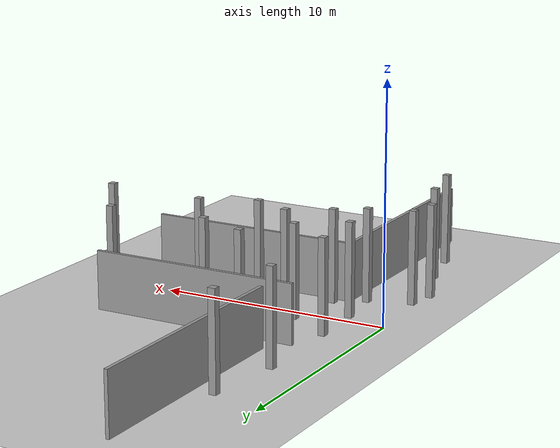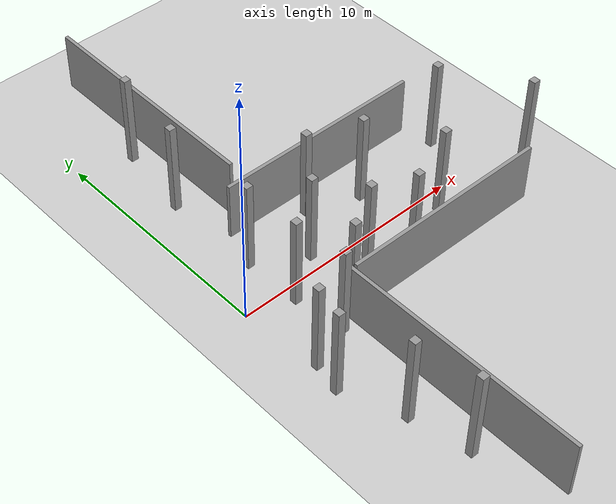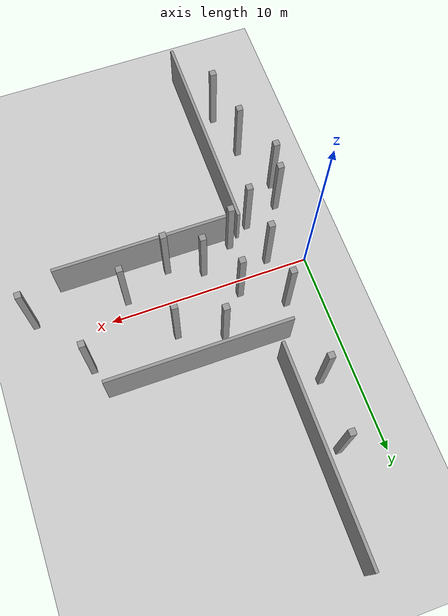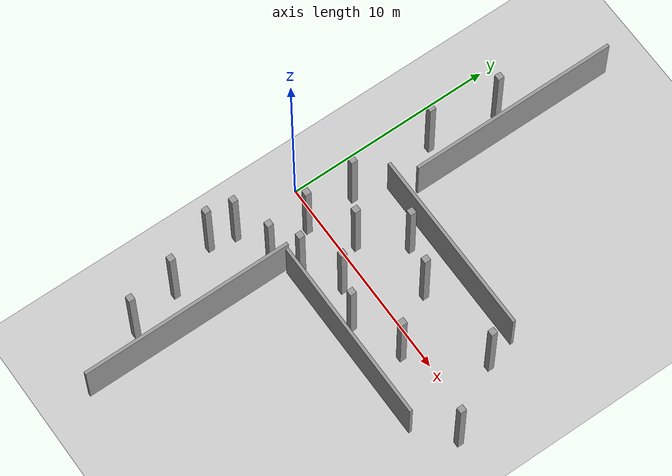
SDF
<sdf version="1.6">
 <world name="default">
  <model name="ground_plane">
   <static>1</static>
   <link name="link">
    <collision name="collision">
     <geometry><plane><normal>0 0 1</normal><size>100 100</size></plane></geometry>
     <surface><friction><ode><mu>100</mu><mu2>50</mu2></ode></friction></surface>
    </collision>
    <visual name="visual">
     <cast_shadows>0</cast_shadows>
     <geometry><plane><normal>0 0 1</normal><size>100 100</size></plane></geometry>
     <material>
      <script><uri>file://media/materials/scripts/gazebo.material</uri><name>Gazebo/Grey</name></script>
     </material>
    </visual>
   </link>
  </model>
  <model name="Untitled_clone_clone">
   <pose>7.44153 -2.41857 0 0 -0 0</pose>
   <link name="Wall_1">
    <collision name="Wall_1_Collision">
     <geometry><box><size>9 0.15 2.5</size></box></geometry>
     <pose>0 0 1.25 0 -0 0</pose>
    </collision>
    <visual name="Wall_1_Visual">
     <pose>0 0 1.25 0 -0 0</pose>
     <geometry><box><size>9 0.15 2.5</size></box></geometry>
     <material>
      <script><uri>file://media/materials/scripts/gazebo.material</uri><name>Gazebo/Grey</name></script>
      <ambient>1 1 1 1</ambient>
     </material>
     <meta><layer>0</layer></meta>
    </visual>
   </link>
   <static>1</static>
  </model>
  <model name="Untitled_clone_clone_0">
   <pose>6.68345 3.44528 0 0 -0 0</pose>
   <link name="Wall_1">
    <collision name="Wall_1_Collision">
     <geometry><box><size>9 0.15 2.5</size></box></geometry>
     <pose>0 0 1.25 0 -0 0</pose>
    </collision>
    <visual name="Wall_1_Visual">
     <pose>0 0 1.25 0 -0 0</pose>
     <geometry><box><size>9 0.15 2.5</size></box></geometry>
     <material>
      <script><uri>file://media/materials/scripts/gazebo.material</uri><name>Gazebo/Grey</name></script>
      <ambient>1 1 1 1</ambient>
     </material>
     <meta><layer>0</layer></meta>
    </visual>
   </link>
   <static>1</static>
  </model>
  <model name="Untitled_0_clone">
   <pose>2.75566 -7.3862 0 0 -0 0</pose>
   <link name="Wall_3">
    <collision name="Wall_3_Collision">
     <geometry><box><size>10.25 0.15 2.5</size></box></geometry>
     <pose>0 0 1.25 0 -0 0</pose>
    </collision>
    <visual name="Wall_3_Visual">
     <pose>0 0 1.25 0 -0 0</pose>
     <geometry><box><size>10.25 0.15 2.5</size></box></geometry>
     <material>
      <script><uri>file://media/materials/scripts/gazebo.material</uri><name>Gazebo/Grey</name></script>
      <ambient>1 1 1 1</ambient>
     </material>
     <meta><layer>0</layer></meta>
    </visual>
    <pose>0 0 0 0 -0 -1.5708</pose>
   </link>
   <static>1</static>
  </model>
  <model name="Untitled_0_clone_1">
   <pose>3.06538 9.43333 0 0 -0 0</pose>
   <link name="Wall_3">
    <collision name="Wall_3_Collision">
     <geometry><box><size>10.25 0.15 2.5</size></box></geometry>
     <pose>0 0 1.25 0 -0 0</pose>
    </collision>
    <visual name="Wall_3_Visual">
     <pose>0 0 1.25 0 -0 0</pose>
     <geometry><box><size>10.25 0.15 2.5</size></box></geometry>
     <material>
      <script><uri>file://media/materials/scripts/gazebo.material</uri><name>Gazebo/Grey</name></script>
      <ambient>1 1 1 1</ambient>
     </material>
     <meta><layer>0</layer></meta>
    </visual>
    <pose>0 0 0 0 -0 -1.5708</pose>
   </link>
   <static>1</static>
  </model>
  <model name="unit_box_clone_clone_24_clone_1">
   <link name="link">
    <inertial>
     <mass>1000</mass>
     <inertia><ixx>1340.83</ixx><ixy>0</ixy><ixz>0</ixz><iyy>1340.83</iyy><iyz>0</iyz><izz>15</izz></inertia>
    </inertial>
    <visual name="visual">
     <geometry><box><size>0.3 0.3 4</size></box></geometry>
     <material>
      <script><name>Gazebo/Grey</name><uri>file://media/materials/scripts/gazebo.material</uri></script>
      <shader type="pixel"><normal_map>__default__</normal_map></shader>
      <ambient>0.3 0.3 0.3 1</ambient>
      <diffuse>0.7 0.7 0.7 1</diffuse>
      <specular>0.01 0.01 0.01 1</specular>
      <emissive>0 0 0 1</emissive>
     </material>
    </visual>
    <collision name="collision">
     <geometry><box><size>0.3 0.3 4</size></box></geometry>
     <surface>
      <friction>
       <ode><mu>1</mu><mu2>1</mu2><fdir1>0 0 0</fdir1><slip1>0</slip1><slip2>0</slip2></ode>
       <torsional>
        <coefficient>1</coefficient>
        <patch_radius>0</patch_radius>
        <surface_radius>0</surface_radius>
        <use_patch_radius>1</use_patch_radius>
        <ode><slip>0</slip></ode>
       </torsional>
      </friction>
      <bounce><restitution_coefficient>0</restitution_coefficient><threshold>1e+06</threshold></bounce>
      <contact>
       <collide_without_contact>0</collide_without_contact>
       <collide_without_contact_bitmask>1</collide_without_contact_bitmask>
       <collide_bitmask>1</collide_bitmask>
       <ode>
        <soft_cfm>0</soft_cfm>
        <soft_erp>0.2</soft_erp>
        <kp>1e+13</kp>
        <kd>1</kd>
        <max_vel>0.01</max_vel>
        <min_depth>0</min_depth>
       </ode>
       <bullet>
        <split_impulse>1</split_impulse>
        <split_impulse_penetration_threshold>-0.01</split_impulse_penetration_threshold>
        <soft_cfm>0</soft_cfm>
        <soft_erp>0.2</soft_erp>
        <kp>1e+13</kp>
        <kd>1</kd>
       </bullet>
      </contact>
     </surface>
    </collision>
   </link>
   <static>0</static>
   <pose>1.73831 1.8342 2 -2e-06 6e-06 -0.002921</pose>
  </model>
  <model name="unit_box_clone_clone_24_clone_3">
   <link name="link">
    <inertial>
     <mass>1000</mass>
     <inertia><ixx>1340.83</ixx><ixy>0</ixy><ixz>0</ixz><iyy>1340.83</iyy><iyz>0</iyz><izz>15</izz></inertia>
    </inertial>
    <visual name="visual">
     <geometry><box><size>0.3 0.3 4</size></box></geometry>
     <material>
      <script><name>Gazebo/Grey</name><uri>file://media/materials/scripts/gazebo.material</uri></script>
      <shader type="pixel"><normal_map>__default__</normal_map></shader>
      <ambient>0.3 0.3 0.3 1</ambient>
      <diffuse>0.7 0.7 0.7 1</diffuse>
      <specular>0.01 0.01 0.01 1</specular>
      <emissive>0 0 0 1</emissive>
     </material>
    </visual>
    <collision name="collision">
     <geometry><box><size>0.3 0.3 4</size></box></geometry>
     <surface>
      <friction>
       <ode><mu>1</mu><mu2>1</mu2><fdir1>0 0 0</fdir1><slip1>0</slip1><slip2>0</slip2></ode>
       <torsional>
        <coefficient>1</coefficient>
        <patch_radius>0</patch_radius>
        <surface_radius>0</surface_radius>
        <use_patch_radius>1</use_patch_radius>
        <ode><slip>0</slip></ode>
       </torsional>
      </friction>
      <bounce><restitution_coefficient>0</restitution_coefficient><threshold>1e+06</threshold></bounce>
      <contact>
       <collide_without_contact>0</collide_without_contact>
       <collide_without_contact_bitmask>1</collide_without_contact_bitmask>
       <collide_bitmask>1</collide_bitmask>
       <ode>
        <soft_cfm>0</soft_cfm>
        <soft_erp>0.2</soft_erp>
        <kp>1e+13</kp>
        <kd>1</kd>
        <max_vel>0.01</max_vel>
        <min_depth>0</min_depth>
       </ode>
       <bullet>
        <split_impulse>1</split_impulse>
        <split_impulse_penetration_threshold>-0.01</split_impulse_penetration_threshold>
        <soft_cfm>0</soft_cfm>
        <soft_erp>0.2</soft_erp>
        <kp>1e+13</kp>
        <kd>1</kd>
       </bullet>
      </contact>
     </surface>
    </collision>
   </link>
   <static>0</static>
   <pose>1.67139 5.986 2 4e-06 -1e-06 -0.002935</pose>
  </model>
  <model name="unit_box_clone_clone_24_clone_5">
   <link name="link">
    <inertial>
     <mass>1000</mass>
     <inertia><ixx>1340.83</ixx><ixy>0</ixy><ixz>0</ixz><iyy>1340.83</iyy><iyz>0</iyz><izz>15</izz></inertia>
    </inertial>
    <visual name="visual">
     <geometry><box><size>0.3 0.3 4</size></box></geometry>
     <material>
      <script><name>Gazebo/Grey</name><uri>file://media/materials/scripts/gazebo.material</uri></script>
      <shader type="pixel"><normal_map>__default__</normal_map></shader>
      <ambient>0.3 0.3 0.3 1</ambient>
      <diffuse>0.7 0.7 0.7 1</diffuse>
      <specular>0.01 0.01 0.01 1</specular>
      <emissive>0 0 0 1</emissive>
     </material>
    </visual>
    <collision name="collision">
     <geometry><box><size>0.3 0.3 4</size></box></geometry>
     <surface>
      <friction>
       <ode><mu>1</mu><mu2>1</mu2><fdir1>0 0 0</fdir1><slip1>0</slip1><slip2>0</slip2></ode>
       <torsional>
        <coefficient>1</coefficient>
        <patch_radius>0</patch_radius>
        <surface_radius>0</surface_radius>
        <use_patch_radius>1</use_patch_radius>
        <ode><slip>0</slip></ode>
       </torsional>
      </friction>
      <bounce><restitution_coefficient>0</restitution_coefficient><threshold>1e+06</threshold></bounce>
      <contact>
       <collide_without_contact>0</collide_without_contact>
       <collide_without_contact_bitmask>1</collide_without_contact_bitmask>
       <collide_bitmask>1</collide_bitmask>
       <ode>
        <soft_cfm>0</soft_cfm>
        <soft_erp>0.2</soft_erp>
        <kp>1e+13</kp>
        <kd>1</kd>
        <max_vel>0.01</max_vel>
        <min_depth>0</min_depth>
       </ode>
       <bullet>
        <split_impulse>1</split_impulse>
        <split_impulse_penetration_threshold>-0.01</split_impulse_penetration_threshold>
        <soft_cfm>0</soft_cfm>
        <soft_erp>0.2</soft_erp>
        <kp>1e+13</kp>
        <kd>1</kd>
       </bullet>
      </contact>
     </surface>
    </collision>
   </link>
   <static>0</static>
   <pose>2.13376 9.26118 2 0 -1e-05 -0.002932</pose>
  </model>
  <model name="unit_box_clone_clone_24_clone_10">
   <link name="link">
    <inertial>
     <mass>1000</mass>
     <inertia><ixx>1340.83</ixx><ixy>0</ixy><ixz>0</ixz><iyy>1340.83</iyy><iyz>0</iyz><izz>15</izz></inertia>
    </inertial>
    <visual name="visual">
     <geometry><box><size>0.3 0.3 4</size></box></geometry>
     <material>
      <script><name>Gazebo/Grey</name><uri>file://media/materials/scripts/gazebo.material</uri></script>
      <shader type="pixel"><normal_map>__default__</normal_map></shader>
      <ambient>0.3 0.3 0.3 1</ambient>
      <diffuse>0.7 0.7 0.7 1</diffuse>
      <specular>0.01 0.01 0.01 1</specular>
      <emissive>0 0 0 1</emissive>
     </material>
    </visual>
    <collision name="collision">
     <geometry><box><size>0.3 0.3 4</size></box></geometry>
     <surface>
      <friction>
       <ode><mu>1</mu><mu2>1</mu2><fdir1>0 0 0</fdir1><slip1>0</slip1><slip2>0</slip2></ode>
       <torsional>
        <coefficient>1</coefficient>
        <patch_radius>0</patch_radius>
        <surface_radius>0</surface_radius>
        <use_patch_radius>1</use_patch_radius>
        <ode><slip>0</slip></ode>
       </torsional>
      </friction>
      <bounce><restitution_coefficient>0</restitution_coefficient><threshold>1e+06</threshold></bounce>
      <contact>
       <collide_without_contact>0</collide_without_contact>
       <collide_without_contact_bitmask>1</collide_without_contact_bitmask>
       <collide_bitmask>1</collide_bitmask>
       <ode>
        <soft_cfm>0</soft_cfm>
        <soft_erp>0.2</soft_erp>
        <kp>1e+13</kp>
        <kd>1</kd>
        <max_vel>0.01</max_vel>
        <min_depth>0</min_depth>
       </ode>
       <bullet>
        <split_impulse>1</split_impulse>
        <split_impulse_penetration_threshold>-0.01</split_impulse_penetration_threshold>
        <soft_cfm>0</soft_cfm>
        <soft_erp>0.2</soft_erp>
        <kp>1e+13</kp>
        <kd>1</kd>
       </bullet>
      </contact>
     </surface>
    </collision>
   </link>
   <static>0</static>
   <pose>0.089496 -4.54654 2 -1.9e-05 -1e-06 -0.002929</pose>
  </model>
  <model name="unit_box_clone_clone_24_clone_12">
   <link name="link">
    <inertial>
     <mass>1000</mass>
     <inertia><ixx>1340.83</ixx><ixy>0</ixy><ixz>0</ixz><iyy>1340.83</iyy><iyz>0</iyz><izz>15</izz></inertia>
    </inertial>
    <visual name="visual">
     <geometry><box><size>0.3 0.3 4</size></box></geometry>
     <material>
      <script><name>Gazebo/Grey</name><uri>file://media/materials/scripts/gazebo.material</uri></script>
      <shader type="pixel"><normal_map>__default__</normal_map></shader>
      <ambient>0.3 0.3 0.3 1</ambient>
      <diffuse>0.7 0.7 0.7 1</diffuse>
      <specular>0.01 0.01 0.01 1</specular>
      <emissive>0 0 0 1</emissive>
     </material>
    </visual>
    <collision name="collision">
     <geometry><box><size>0.3 0.3 4</size></box></geometry>
     <surface>
      <friction>
       <ode><mu>1</mu><mu2>1</mu2><fdir1>0 0 0</fdir1><slip1>0</slip1><slip2>0</slip2></ode>
       <torsional>
        <coefficient>1</coefficient>
        <patch_radius>0</patch_radius>
        <surface_radius>0</surface_radius>
        <use_patch_radius>1</use_patch_radius>
        <ode><slip>0</slip></ode>
       </torsional>
      </friction>
      <bounce><restitution_coefficient>0</restitution_coefficient><threshold>1e+06</threshold></bounce>
      <contact>
       <collide_without_contact>0</collide_without_contact>
       <collide_without_contact_bitmask>1</collide_without_contact_bitmask>
       <collide_bitmask>1</collide_bitmask>
       <ode>
        <soft_cfm>0</soft_cfm>
        <soft_erp>0.2</soft_erp>
        <kp>1e+13</kp>
        <kd>1</kd>
        <max_vel>0.01</max_vel>
        <min_depth>0</min_depth>
       </ode>
       <bullet>
        <split_impulse>1</split_impulse>
        <split_impulse_penetration_threshold>-0.01</split_impulse_penetration_threshold>
        <soft_cfm>0</soft_cfm>
        <soft_erp>0.2</soft_erp>
        <kp>1e+13</kp>
        <kd>1</kd>
       </bullet>
      </contact>
     </surface>
    </collision>
   </link>
   <static>0</static>
   <pose>1.83326 -0.615108 2 -3.4e-05 -0 -0.002931</pose>
  </model>
  <model name="unit_box_clone_clone_24_clone_13">
   <link name="link">
    <inertial>
     <mass>1000</mass>
     <inertia><ixx>1340.83</ixx><ixy>0</ixy><ixz>0</ixz><iyy>1340.83</iyy><iyz>0</iyz><izz>15</izz></inertia>
    </inertial>
    <visual name="visual">
     <geometry><box><size>0.3 0.3 4</size></box></geometry>
     <material>
      <script><name>Gazebo/Grey</name><uri>file://media/materials/scripts/gazebo.material</uri></script>
      <shader type="pixel"><normal_map>__default__</normal_map></shader>
      <ambient>0.3 0.3 0.3 1</ambient>
      <diffuse>0.7 0.7 0.7 1</diffuse>
      <specular>0.01 0.01 0.01 1</specular>
      <emissive>0 0 0 1</emissive>
     </material>
    </visual>
    <collision name="collision">
     <geometry><box><size>0.3 0.3 4</size></box></geometry>
     <surface>
      <friction>
       <ode><mu>1</mu><mu2>1</mu2><fdir1>0 0 0</fdir1><slip1>0</slip1><slip2>0</slip2></ode>
       <torsional>
        <coefficient>1</coefficient>
        <patch_radius>0</patch_radius>
        <surface_radius>0</surface_radius>
        <use_patch_radius>1</use_patch_radius>
        <ode><slip>0</slip></ode>
       </torsional>
      </friction>
      <bounce><restitution_coefficient>0</restitution_coefficient><threshold>1e+06</threshold></bounce>
      <contact>
       <collide_without_contact>0</collide_without_contact>
       <collide_without_contact_bitmask>1</collide_without_contact_bitmask>
       <collide_bitmask>1</collide_bitmask>
       <ode>
        <soft_cfm>0</soft_cfm>
        <soft_erp>0.2</soft_erp>
        <kp>1e+13</kp>
        <kd>1</kd>
        <max_vel>0.01</max_vel>
        <min_depth>0</min_depth>
       </ode>
       <bullet>
        <split_impulse>1</split_impulse>
        <split_impulse_penetration_threshold>-0.01</split_impulse_penetration_threshold>
        <soft_cfm>0</soft_cfm>
        <soft_erp>0.2</soft_erp>
        <kp>1e+13</kp>
        <kd>1</kd>
       </bullet>
      </contact>
     </surface>
    </collision>
   </link>
   <static>0</static>
   <pose>2.11596 -2.74092 2 0 -9e-06 -0.002928</pose>
  </model>
  <model name="unit_box_clone_clone_24_clone_14">
   <link name="link">
    <inertial>
     <mass>1000</mass>
     <inertia><ixx>1340.83</ixx><ixy>0</ixy><ixz>0</ixz><iyy>1340.83</iyy><iyz>0</iyz><izz>15</izz></inertia>
    </inertial>
    <visual name="visual">
     <geometry><box><size>0.3 0.3 4</size></box></geometry>
     <material>
      <script><name>Gazebo/Grey</name><uri>file://media/materials/scripts/gazebo.material</uri></script>
      <shader type="pixel"><normal_map>__default__</normal_map></shader>
      <ambient>0.3 0.3 0.3 1</ambient>
      <diffuse>0.7 0.7 0.7 1</diffuse>
      <specular>0.01 0.01 0.01 1</specular>
      <emissive>0 0 0 1</emissive>
     </material>
    </visual>
    <collision name="collision">
     <geometry><box><size>0.3 0.3 4</size></box></geometry>
     <surface>
      <friction>
       <ode><mu>1</mu><mu2>1</mu2><fdir1>0 0 0</fdir1><slip1>0</slip1><slip2>0</slip2></ode>
       <torsional>
        <coefficient>1</coefficient>
        <patch_radius>0</patch_radius>
        <surface_radius>0</surface_radius>
        <use_patch_radius>1</use_patch_radius>
        <ode><slip>0</slip></ode>
       </torsional>
      </friction>
      <bounce><restitution_coefficient>0</restitution_coefficient><threshold>1e+06</threshold></bounce>
      <contact>
       <collide_without_contact>0</collide_without_contact>
       <collide_without_contact_bitmask>1</collide_without_contact_bitmask>
       <collide_bitmask>1</collide_bitmask>
       <ode>
        <soft_cfm>0</soft_cfm>
        <soft_erp>0.2</soft_erp>
        <kp>1e+13</kp>
        <kd>1</kd>
        <max_vel>0.01</max_vel>
        <min_depth>0</min_depth>
       </ode>
       <bullet>
        <split_impulse>1</split_impulse>
        <split_impulse_penetration_threshold>-0.01</split_impulse_penetration_threshold>
        <soft_cfm>0</soft_cfm>
        <soft_erp>0.2</soft_erp>
        <kp>1e+13</kp>
        <kd>1</kd>
       </bullet>
      </contact>
     </surface>
    </collision>
   </link>
   <static>0</static>
   <pose>1.05507 -6.97856 2 0 -2e-06 -0.002931</pose>
  </model>
  <model name="unit_box_clone_clone_24_clone_16">
   <link name="link">
    <inertial>
     <mass>1000</mass>
     <inertia><ixx>1340.83</ixx><ixy>0</ixy><ixz>0</ixz><iyy>1340.83</iyy><iyz>0</iyz><izz>15</izz></inertia>
    </inertial>
    <visual name="visual">
     <geometry><box><size>0.3 0.3 4</size></box></geometry>
     <material>
      <script><name>Gazebo/Grey</name><uri>file://media/materials/scripts/gazebo.material</uri></script>
      <shader type="pixel"><normal_map>__default__</normal_map></shader>
      <ambient>0.3 0.3 0.3 1</ambient>
      <diffuse>0.7 0.7 0.7 1</diffuse>
      <specular>0.01 0.01 0.01 1</specular>
      <emissive>0 0 0 1</emissive>
     </material>
    </visual>
    <collision name="collision">
     <geometry><box><size>0.3 0.3 4</size></box></geometry>
     <surface>
      <friction>
       <ode><mu>1</mu><mu2>1</mu2><fdir1>0 0 0</fdir1><slip1>0</slip1><slip2>0</slip2></ode>
       <torsional>
        <coefficient>1</coefficient>
        <patch_radius>0</patch_radius>
        <surface_radius>0</surface_radius>
        <use_patch_radius>1</use_patch_radius>
        <ode><slip>0</slip></ode>
       </torsional>
      </friction>
      <bounce><restitution_coefficient>0</restitution_coefficient><threshold>1e+06</threshold></bounce>
      <contact>
       <collide_without_contact>0</collide_without_contact>
       <collide_without_contact_bitmask>1</collide_without_contact_bitmask>
       <collide_bitmask>1</collide_bitmask>
       <ode>
        <soft_cfm>0</soft_cfm>
        <soft_erp>0.2</soft_erp>
        <kp>1e+13</kp>
        <kd>1</kd>
        <max_vel>0.01</max_vel>
        <min_depth>0</min_depth>
       </ode>
       <bullet>
        <split_impulse>1</split_impulse>
        <split_impulse_penetration_threshold>-0.01</split_impulse_penetration_threshold>
        <soft_cfm>0</soft_cfm>
        <soft_erp>0.2</soft_erp>
        <kp>1e+13</kp>
        <kd>1</kd>
       </bullet>
      </contact>
     </surface>
    </collision>
   </link>
   <static>0</static>
   <pose>1.58372 -9.35543 2 -1e-06 -2e-06 -0.002927</pose>
  </model>
  <model name="unit_box_clone_clone_24_clone_18">
   <link name="link">
    <inertial>
     <mass>1000</mass>
     <inertia><ixx>1340.83</ixx><ixy>0</ixy><ixz>0</ixz><iyy>1340.83</iyy><iyz>0</iyz><izz>15</izz></inertia>
    </inertial>
    <visual name="visual">
     <geometry><box><size>0.3 0.3 4</size></box></geometry>
     <material>
      <script><name>Gazebo/Grey</name><uri>file://media/materials/scripts/gazebo.material</uri></script>
      <shader type="pixel"><normal_map>__default__</normal_map></shader>
      <ambient>0.3 0.3 0.3 1</ambient>
      <diffuse>0.7 0.7 0.7 1</diffuse>
      <specular>0.01 0.01 0.01 1</specular>
      <emissive>0 0 0 1</emissive>
     </material>
    </visual>
    <collision name="collision">
     <geometry><box><size>0.3 0.3 4</size></box></geometry>
     <surface>
      <friction>
       <ode><mu>1</mu><mu2>1</mu2><fdir1>0 0 0</fdir1><slip1>0</slip1><slip2>0</slip2></ode>
       <torsional>
        <coefficient>1</coefficient>
        <patch_radius>0</patch_radius>
        <surface_radius>0</surface_radius>
        <use_patch_radius>1</use_patch_radius>
        <ode><slip>0</slip></ode>
       </torsional>
      </friction>
      <bounce><restitution_coefficient>0</restitution_coefficient><threshold>1e+06</threshold></bounce>
      <contact>
       <collide_without_contact>0</collide_without_contact>
       <collide_without_contact_bitmask>1</collide_without_contact_bitmask>
       <collide_bitmask>1</collide_bitmask>
       <ode>
        <soft_cfm>0</soft_cfm>
        <soft_erp>0.2</soft_erp>
        <kp>1e+13</kp>
        <kd>1</kd>
        <max_vel>0.01</max_vel>
        <min_depth>0</min_depth>
       </ode>
       <bullet>
        <split_impulse>1</split_impulse>
        <split_impulse_penetration_threshold>-0.01</split_impulse_penetration_threshold>
        <soft_cfm>0</soft_cfm>
        <soft_erp>0.2</soft_erp>
        <kp>1e+13</kp>
        <kd>1</kd>
       </bullet>
      </contact>
     </surface>
    </collision>
   </link>
   <static>0</static>
   <pose>7.24095 1.68536 2 -2e-06 -0 -0.002929</pose>
  </model>
  <model name="unit_box_clone_clone_24_clone_19">
   <link name="link">
    <inertial>
     <mass>1000</mass>
     <inertia><ixx>1340.83</ixx><ixy>0</ixy><ixz>0</ixz><iyy>1340.83</iyy><iyz>0</iyz><izz>15</izz></inertia>
    </inertial>
    <visual name="visual">
     <geometry><box><size>0.3 0.3 4</size></box></geometry>
     <material>
      <script><name>Gazebo/Grey</name><uri>file://media/materials/scripts/gazebo.material</uri></script>
      <shader type="pixel"><normal_map>__default__</normal_map></shader>
      <ambient>0.3 0.3 0.3 1</ambient>
      <diffuse>0.7 0.7 0.7 1</diffuse>
      <specular>0.01 0.01 0.01 1</specular>
      <emissive>0 0 0 1</emissive>
     </material>
    </visual>
    <collision name="collision">
     <geometry><box><size>0.3 0.3 4</size></box></geometry>
     <surface>
      <friction>
       <ode><mu>1</mu><mu2>1</mu2><fdir1>0 0 0</fdir1><slip1>0</slip1><slip2>0</slip2></ode>
       <torsional>
        <coefficient>1</coefficient>
        <patch_radius>0</patch_radius>
        <surface_radius>0</surface_radius>
        <use_patch_radius>1</use_patch_radius>
        <ode><slip>0</slip></ode>
       </torsional>
      </friction>
      <bounce><restitution_coefficient>0</restitution_coefficient><threshold>1e+06</threshold></bounce>
      <contact>
       <collide_without_contact>0</collide_without_contact>
       <collide_without_contact_bitmask>1</collide_without_contact_bitmask>
       <collide_bitmask>1</collide_bitmask>
       <ode>
        <soft_cfm>0</soft_cfm>
        <soft_erp>0.2</soft_erp>
        <kp>1e+13</kp>
        <kd>1</kd>
        <max_vel>0.01</max_vel>
        <min_depth>0</min_depth>
       </ode>
       <bullet>
        <split_impulse>1</split_impulse>
        <split_impulse_penetration_threshold>-0.01</split_impulse_penetration_threshold>
        <soft_cfm>0</soft_cfm>
        <soft_erp>0.2</soft_erp>
        <kp>1e+13</kp>
        <kd>1</kd>
       </bullet>
      </contact>
     </surface>
    </collision>
   </link>
   <static>0</static>
   <pose>5.00004 -1.00392 2 6e-06 2.7e-05 -0.002929</pose>
  </model>
  <model name="unit_box_clone_clone_24_clone_20">
   <link name="link">
    <inertial>
     <mass>1000</mass>
     <inertia><ixx>1340.83</ixx><ixy>0</ixy><ixz>0</ixz><iyy>1340.83</iyy><iyz>0</iyz><izz>15</izz></inertia>
    </inertial>
    <visual name="visual">
     <geometry><box><size>0.3 0.3 4</size></box></geometry>
     <material>
      <script><name>Gazebo/Grey</name><uri>file://media/materials/scripts/gazebo.material</uri></script>
      <shader type="pixel"><normal_map>__default__</normal_map></shader>
      <ambient>0.3 0.3 0.3 1</ambient>
      <diffuse>0.7 0.7 0.7 1</diffuse>
      <specular>0.01 0.01 0.01 1</specular>
      <emissive>0 0 0 1</emissive>
     </material>
    </visual>
    <collision name="collision">
     <geometry><box><size>0.3 0.3 4</size></box></geometry>
     <surface>
      <friction>
       <ode><mu>1</mu><mu2>1</mu2><fdir1>0 0 0</fdir1><slip1>0</slip1><slip2>0</slip2></ode>
       <torsional>
        <coefficient>1</coefficient>
        <patch_radius>0</patch_radius>
        <surface_radius>0</surface_radius>
        <use_patch_radius>1</use_patch_radius>
        <ode><slip>0</slip></ode>
       </torsional>
      </friction>
      <bounce><restitution_coefficient>0</restitution_coefficient><threshold>1e+06</threshold></bounce>
      <contact>
       <collide_without_contact>0</collide_without_contact>
       <collide_without_contact_bitmask>1</collide_without_contact_bitmask>
       <collide_bitmask>1</collide_bitmask>
       <ode>
        <soft_cfm>0</soft_cfm>
        <soft_erp>0.2</soft_erp>
        <kp>1e+13</kp>
        <kd>1</kd>
        <max_vel>0.01</max_vel>
        <min_depth>0</min_depth>
       </ode>
       <bullet>
        <split_impulse>1</split_impulse>
        <split_impulse_penetration_threshold>-0.01</split_impulse_penetration_threshold>
        <soft_cfm>0</soft_cfm>
        <soft_erp>0.2</soft_erp>
        <kp>1e+13</kp>
        <kd>1</kd>
       </bullet>
      </contact>
     </surface>
    </collision>
   </link>
   <static>0</static>
   <pose>6.65385 -1.69614 2 1e-05 -0 -0.00292</pose>
  </model>
  <model name="unit_box_clone_clone_24_clone_21">
   <link name="link">
    <inertial>
     <mass>1000</mass>
     <inertia><ixx>1340.83</ixx><ixy>0</ixy><ixz>0</ixz><iyy>1340.83</iyy><iyz>0</iyz><izz>15</izz></inertia>
    </inertial>
    <visual name="visual">
     <geometry><box><size>0.3 0.3 4</size></box></geometry>
     <material>
      <script><name>Gazebo/Grey</name><uri>file://media/materials/scripts/gazebo.material</uri></script>
      <shader type="pixel"><normal_map>__default__</normal_map></shader>
      <ambient>0.3 0.3 0.3 1</ambient>
      <diffuse>0.7 0.7 0.7 1</diffuse>
      <specular>0.01 0.01 0.01 1</specular>
      <emissive>0 0 0 1</emissive>
     </material>
    </visual>
    <collision name="collision">
     <geometry><box><size>0.3 0.3 4</size></box></geometry>
     <surface>
      <friction>
       <ode><mu>1</mu><mu2>1</mu2><fdir1>0 0 0</fdir1><slip1>0</slip1><slip2>0</slip2></ode>
       <torsional>
        <coefficient>1</coefficient>
        <patch_radius>0</patch_radius>
        <surface_radius>0</surface_radius>
        <use_patch_radius>1</use_patch_radius>
        <ode><slip>0</slip></ode>
       </torsional>
      </friction>
      <bounce><restitution_coefficient>0</restitution_coefficient><threshold>1e+06</threshold></bounce>
      <contact>
       <collide_without_contact>0</collide_without_contact>
       <collide_without_contact_bitmask>1</collide_without_contact_bitmask>
       <collide_bitmask>1</collide_bitmask>
       <ode>
        <soft_cfm>0</soft_cfm>
        <soft_erp>0.2</soft_erp>
        <kp>1e+13</kp>
        <kd>1</kd>
        <max_vel>0.01</max_vel>
        <min_depth>0</min_depth>
       </ode>
       <bullet>
        <split_impulse>1</split_impulse>
        <split_impulse_penetration_threshold>-0.01</split_impulse_penetration_threshold>
        <soft_cfm>0</soft_cfm>
        <soft_erp>0.2</soft_erp>
        <kp>1e+13</kp>
        <kd>1</kd>
       </bullet>
      </contact>
     </surface>
    </collision>
   </link>
   <static>0</static>
   <pose>8.98396 -0.767818 2 -1e-06 -2e-06 -0.002924</pose>
  </model>
  <model name="unit_box_clone_clone_24_clone_22">
   <link name="link">
    <inertial>
     <mass>1000</mass>
     <inertia><ixx>1340.83</ixx><ixy>0</ixy><ixz>0</ixz><iyy>1340.83</iyy><iyz>0</iyz><izz>15</izz></inertia>
    </inertial>
    <visual name="visual">
     <geometry><box><size>0.3 0.3 4</size></box></geometry>
     <material>
      <script><name>Gazebo/Grey</name><uri>file://media/materials/scripts/gazebo.material</uri></script>
      <shader type="pixel"><normal_map>__default__</normal_map></shader>
      <ambient>0.3 0.3 0.3 1</ambient>
      <diffuse>0.7 0.7 0.7 1</diffuse>
      <specular>0.01 0.01 0.01 1</specular>
      <emissive>0 0 0 1</emissive>
     </material>
    </visual>
    <collision name="collision">
     <geometry><box><size>0.3 0.3 4</size></box></geometry>
     <surface>
      <friction>
       <ode><mu>1</mu><mu2>1</mu2><fdir1>0 0 0</fdir1><slip1>0</slip1><slip2>0</slip2></ode>
       <torsional>
        <coefficient>1</coefficient>
        <patch_radius>0</patch_radius>
        <surface_radius>0</surface_radius>
        <use_patch_radius>1</use_patch_radius>
        <ode><slip>0</slip></ode>
       </torsional>
      </friction>
      <bounce><restitution_coefficient>0</restitution_coefficient><threshold>1e+06</threshold></bounce>
      <contact>
       <collide_without_contact>0</collide_without_contact>
       <collide_without_contact_bitmask>1</collide_without_contact_bitmask>
       <collide_bitmask>1</collide_bitmask>
       <ode>
        <soft_cfm>0</soft_cfm>
        <soft_erp>0.2</soft_erp>
        <kp>1e+13</kp>
        <kd>1</kd>
        <max_vel>0.01</max_vel>
        <min_depth>0</min_depth>
       </ode>
       <bullet>
        <split_impulse>1</split_impulse>
        <split_impulse_penetration_threshold>-0.01</split_impulse_penetration_threshold>
        <soft_cfm>0</soft_cfm>
        <soft_erp>0.2</soft_erp>
        <kp>1e+13</kp>
        <kd>1</kd>
       </bullet>
      </contact>
     </surface>
    </collision>
   </link>
   <static>0</static>
   <pose>3.69284 0.620321 2 -0 -3e-06 -0.002935</pose>
  </model>
  <model name="unit_box_clone_clone_24_clone_23">
   <link name="link">
    <inertial>
     <mass>1000</mass>
     <inertia><ixx>1340.83</ixx><ixy>0</ixy><ixz>0</ixz><iyy>1340.83</iyy><iyz>0</iyz><izz>15</izz></inertia>
    </inertial>
    <visual name="visual">
     <geometry><box><size>0.3 0.3 4</size></box></geometry>
     <material>
      <script><name>Gazebo/Grey</name><uri>file://media/materials/scripts/gazebo.material</uri></script>
      <shader type="pixel"><normal_map>__default__</normal_map></shader>
      <ambient>0.3 0.3 0.3 1</ambient>
      <diffuse>0.7 0.7 0.7 1</diffuse>
      <specular>0.01 0.01 0.01 1</specular>
      <emissive>0 0 0 1</emissive>
     </material>
    </visual>
    <collision name="collision">
     <geometry><box><size>0.3 0.3 4</size></box></geometry>
     <surface>
      <friction>
       <ode><mu>1</mu><mu2>1</mu2><fdir1>0 0 0</fdir1><slip1>0</slip1><slip2>0</slip2></ode>
       <torsional>
        <coefficient>1</coefficient>
        <patch_radius>0</patch_radius>
        <surface_radius>0</surface_radius>
        <use_patch_radius>1</use_patch_radius>
        <ode><slip>0</slip></ode>
       </torsional>
      </friction>
      <bounce><restitution_coefficient>0</restitution_coefficient><threshold>1e+06</threshold></bounce>
      <contact>
       <collide_without_contact>0</collide_without_contact>
       <collide_without_contact_bitmask>1</collide_without_contact_bitmask>
       <collide_bitmask>1</collide_bitmask>
       <ode>
        <soft_cfm>0</soft_cfm>
        <soft_erp>0.2</soft_erp>
        <kp>1e+13</kp>
        <kd>1</kd>
        <max_vel>0.01</max_vel>
        <min_depth>0</min_depth>
       </ode>
       <bullet>
        <split_impulse>1</split_impulse>
        <split_impulse_penetration_threshold>-0.01</split_impulse_penetration_threshold>
        <soft_cfm>0</soft_cfm>
        <soft_erp>0.2</soft_erp>
        <kp>1e+13</kp>
        <kd>1</kd>
       </bullet>
      </contact>
     </surface>
    </collision>
   </link>
   <static>0</static>
   <pose>11.486 2.02272 2 -0 -4e-06 -0.002931</pose>
  </model>
  <model name="unit_box_clone_clone_24_clone_24">
   <link name="link">
    <inertial>
     <mass>1000</mass>
     <inertia><ixx>1340.83</ixx><ixy>0</ixy><ixz>0</ixz><iyy>1340.83</iyy><iyz>0</iyz><izz>15</izz></inertia>
    </inertial>
    <visual name="visual">
     <geometry><box><size>0.3 0.3 4</size></box></geometry>
     <material>
      <script><name>Gazebo/Grey</name><uri>file://media/materials/scripts/gazebo.material</uri></script>
      <shader type="pixel"><normal_map>__default__</normal_map></shader>
      <ambient>0.3 0.3 0.3 1</ambient>
      <diffuse>0.7 0.7 0.7 1</diffuse>
      <specular>0.01 0.01 0.01 1</specular>
      <emissive>0 0 0 1</emissive>
     </material>
    </visual>
    <collision name="collision">
     <geometry><box><size>0.3 0.3 4</size></box></geometry>
     <surface>
      <friction>
       <ode><mu>1</mu><mu2>1</mu2><fdir1>0 0 0</fdir1><slip1>0</slip1><slip2>0</slip2></ode>
       <torsional>
        <coefficient>1</coefficient>
        <patch_radius>0</patch_radius>
        <surface_radius>0</surface_radius>
        <use_patch_radius>1</use_patch_radius>
        <ode><slip>0</slip></ode>
       </torsional>
      </friction>
      <bounce><restitution_coefficient>0</restitution_coefficient><threshold>1e+06</threshold></bounce>
      <contact>
       <collide_without_contact>0</collide_without_contact>
       <collide_without_contact_bitmask>1</collide_without_contact_bitmask>
       <collide_bitmask>1</collide_bitmask>
       <ode>
        <soft_cfm>0</soft_cfm>
        <soft_erp>0.2</soft_erp>
        <kp>1e+13</kp>
        <kd>1</kd>
        <max_vel>0.01</max_vel>
        <min_depth>0</min_depth>
       </ode>
       <bullet>
        <split_impulse>1</split_impulse>
        <split_impulse_penetration_threshold>-0.01</split_impulse_penetration_threshold>
        <soft_cfm>0</soft_cfm>
        <soft_erp>0.2</soft_erp>
        <kp>1e+13</kp>
        <kd>1</kd>
       </bullet>
      </contact>
     </surface>
    </collision>
   </link>
   <static>0</static>
   <pose>13.4979 -1.03667 2 5e-06 -0 -0.002931</pose>
  </model>
  <model name="unit_box_clone_clone_24_clone_clone_5">
   <link name="link">
    <inertial>
     <mass>1000</mass>
     <inertia><ixx>1340.83</ixx><ixy>0</ixy><ixz>0</ixz><iyy>1340.83</iyy><iyz>0</iyz><izz>15</izz></inertia>
    </inertial>
    <visual name="visual">
     <geometry><box><size>0.3 0.3 4</size></box></geometry>
     <material>
      <script><name>Gazebo/Grey</name><uri>file://media/materials/scripts/gazebo.material</uri></script>
      <shader type="pixel"><normal_map>__default__</normal_map></shader>
      <ambient>0.3 0.3 0.3 1</ambient>
      <diffuse>0.7 0.7 0.7 1</diffuse>
      <specular>0.01 0.01 0.01 1</specular>
      <emissive>0 0 0 1</emissive>
     </material>
    </visual>
    <collision name="collision">
     <geometry><box><size>0.3 0.3 4</size></box></geometry>
     <surface>
      <friction>
       <ode><mu>1</mu><mu2>1</mu2><fdir1>0 0 0</fdir1><slip1>0</slip1><slip2>0</slip2></ode>
       <torsional>
        <coefficient>1</coefficient>
        <patch_radius>0</patch_radius>
        <surface_radius>0</surface_radius>
        <use_patch_radius>1</use_patch_radius>
        <ode><slip>0</slip></ode>
       </torsional>
      </friction>
      <bounce><restitution_coefficient>0</restitution_coefficient><threshold>1e+06</threshold></bounce>
      <contact>
       <collide_without_contact>0</collide_without_contact>
       <collide_without_contact_bitmask>1</collide_without_contact_bitmask>
       <collide_bitmask>1</collide_bitmask>
       <ode>
        <soft_cfm>0</soft_cfm>
        <soft_erp>0.2</soft_erp>
        <kp>1e+13</kp>
        <kd>1</kd>
        <max_vel>0.01</max_vel>
        <min_depth>0</min_depth>
       </ode>
       <bullet>
        <split_impulse>1</split_impulse>
        <split_impulse_penetration_threshold>-0.01</split_impulse_penetration_threshold>
        <soft_cfm>0</soft_cfm>
        <soft_erp>0.2</soft_erp>
        <kp>1e+13</kp>
        <kd>1</kd>
       </bullet>
      </contact>
     </surface>
    </collision>
   </link>
   <static>0</static>
   <pose>0.340611 -3.33839 2 1.6e-05 -1e-06 -0.002925</pose>
  </model>
  <model name="unit_box_clone_clone_24_clone_clone_6">
   <link name="link">
    <inertial>
     <mass>1000</mass>
     <inertia><ixx>1340.83</ixx><ixy>0</ixy><ixz>0</ixz><iyy>1340.83</iyy><iyz>0</iyz><izz>15</izz></inertia>
    </inertial>
    <visual name="visual">
     <geometry><box><size>0.3 0.3 4</size></box></geometry>
     <material>
      <script><name>Gazebo/Grey</name><uri>file://media/materials/scripts/gazebo.material</uri></script>
      <shader type="pixel"><normal_map>__default__</normal_map></shader>
      <ambient>0.3 0.3 0.3 1</ambient>
      <diffuse>0.7 0.7 0.7 1</diffuse>
      <specular>0.01 0.01 0.01 1</specular>
      <emissive>0 0 0 1</emissive>
     </material>
    </visual>
    <collision name="collision">
     <geometry><box><size>0.3 0.3 4</size></box></geometry>
     <surface>
      <friction>
       <ode><mu>1</mu><mu2>1</mu2><fdir1>0 0 0</fdir1><slip1>0</slip1><slip2>0</slip2></ode>
       <torsional>
        <coefficient>1</coefficient>
        <patch_radius>0</patch_radius>
        <surface_radius>0</surface_radius>
        <use_patch_radius>1</use_patch_radius>
        <ode><slip>0</slip></ode>
       </torsional>
      </friction>
      <bounce><restitution_coefficient>0</restitution_coefficient><threshold>1e+06</threshold></bounce>
      <contact>
       <collide_without_contact>0</collide_without_contact>
       <collide_without_contact_bitmask>1</collide_without_contact_bitmask>
       <collide_bitmask>1</collide_bitmask>
       <ode>
        <soft_cfm>0</soft_cfm>
        <soft_erp>0.2</soft_erp>
        <kp>1e+13</kp>
        <kd>1</kd>
        <max_vel>0.01</max_vel>
        <min_depth>0</min_depth>
       </ode>
       <bullet>
        <split_impulse>1</split_impulse>
        <split_impulse_penetration_threshold>-0.01</split_impulse_penetration_threshold>
        <soft_cfm>0</soft_cfm>
        <soft_erp>0.2</soft_erp>
        <kp>1e+13</kp>
        <kd>1</kd>
       </bullet>
      </contact>
     </surface>
    </collision>
   </link>
   <static>0</static>
   <pose>5.1235 2.47069 2 -3e-06 -6e-06 -0.002926</pose>
  </model>
  <model name="unit_box_clone_clone_24_clone_clone_7">
   <link name="link">
    <inertial>
     <mass>1000</mass>
     <inertia><ixx>1340.83</ixx><ixy>0</ixy><ixz>0</ixz><iyy>1340.83</iyy><iyz>0</iyz><izz>15</izz></inertia>
    </inertial>
    <visual name="visual">
     <geometry><box><size>0.3 0.3 4</size></box></geometry>
     <material>
      <script><name>Gazebo/Grey</name><uri>file://media/materials/scripts/gazebo.material</uri></script>
      <shader type="pixel"><normal_map>__default__</normal_map></shader>
      <ambient>0.3 0.3 0.3 1</ambient>
      <diffuse>0.7 0.7 0.7 1</diffuse>
      <specular>0.01 0.01 0.01 1</specular>
      <emissive>0 0 0 1</emissive>
     </material>
    </visual>
    <collision name="collision">
     <geometry><box><size>0.3 0.3 4</size></box></geometry>
     <surface>
      <friction>
       <ode><mu>1</mu><mu2>1</mu2><fdir1>0 0 0</fdir1><slip1>0</slip1><slip2>0</slip2></ode>
       <torsional>
        <coefficient>1</coefficient>
        <patch_radius>0</patch_radius>
        <surface_radius>0</surface_radius>
        <use_patch_radius>1</use_patch_radius>
        <ode><slip>0</slip></ode>
       </torsional>
      </friction>
      <bounce><restitution_coefficient>0</restitution_coefficient><threshold>1e+06</threshold></bounce>
      <contact>
       <collide_without_contact>0</collide_without_contact>
       <collide_without_contact_bitmask>1</collide_without_contact_bitmask>
       <collide_bitmask>1</collide_bitmask>
       <ode>
        <soft_cfm>0</soft_cfm>
        <soft_erp>0.2</soft_erp>
        <kp>1e+13</kp>
        <kd>1</kd>
        <max_vel>0.01</max_vel>
        <min_depth>0</min_depth>
       </ode>
       <bullet>
        <split_impulse>1</split_impulse>
        <split_impulse_penetration_threshold>-0.01</split_impulse_penetration_threshold>
        <soft_cfm>0</soft_cfm>
        <soft_erp>0.2</soft_erp>
        <kp>1e+13</kp>
        <kd>1</kd>
       </bullet>
      </contact>
     </surface>
    </collision>
   </link>
   <static>0</static>
   <pose>3.30262 -1.9735 2.00003 0.000171 0 -0.002924</pose>
  </model>
 </world>
</sdf>
